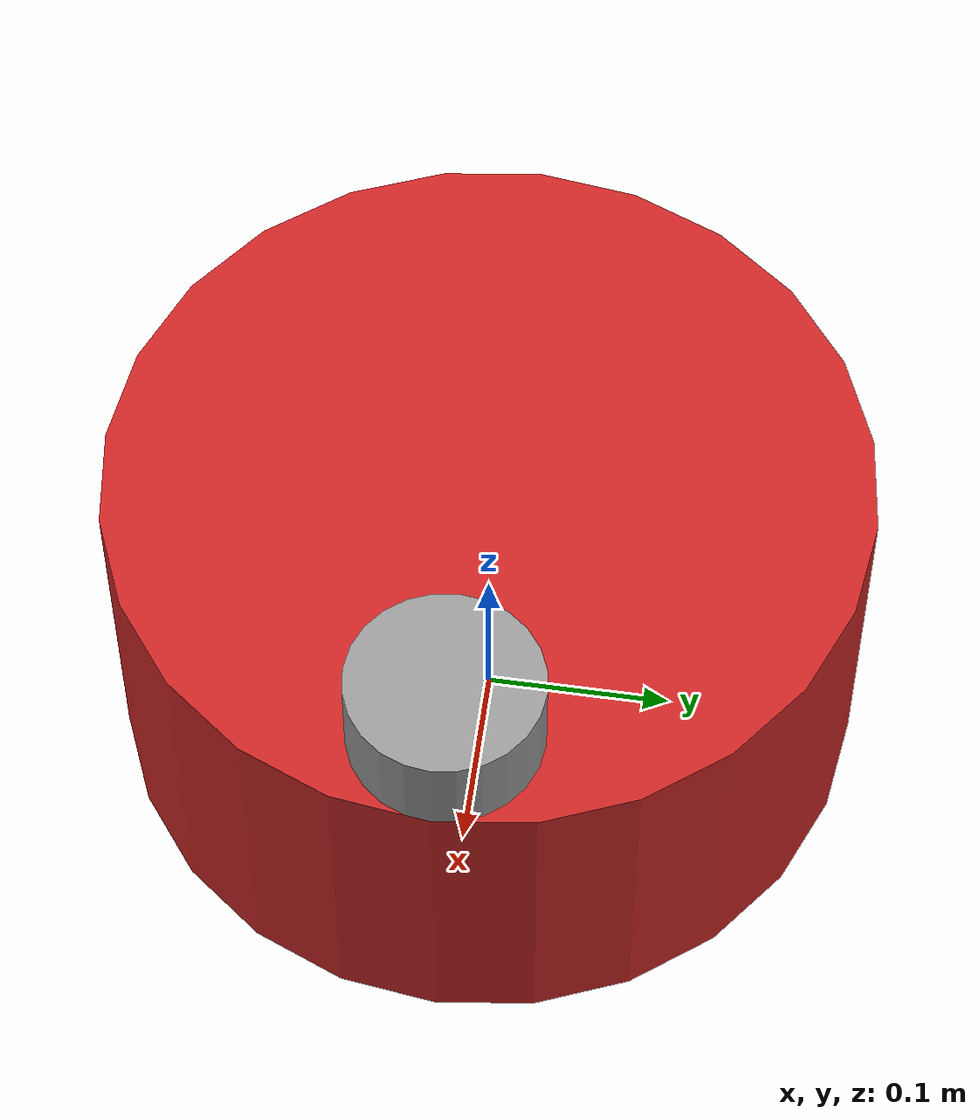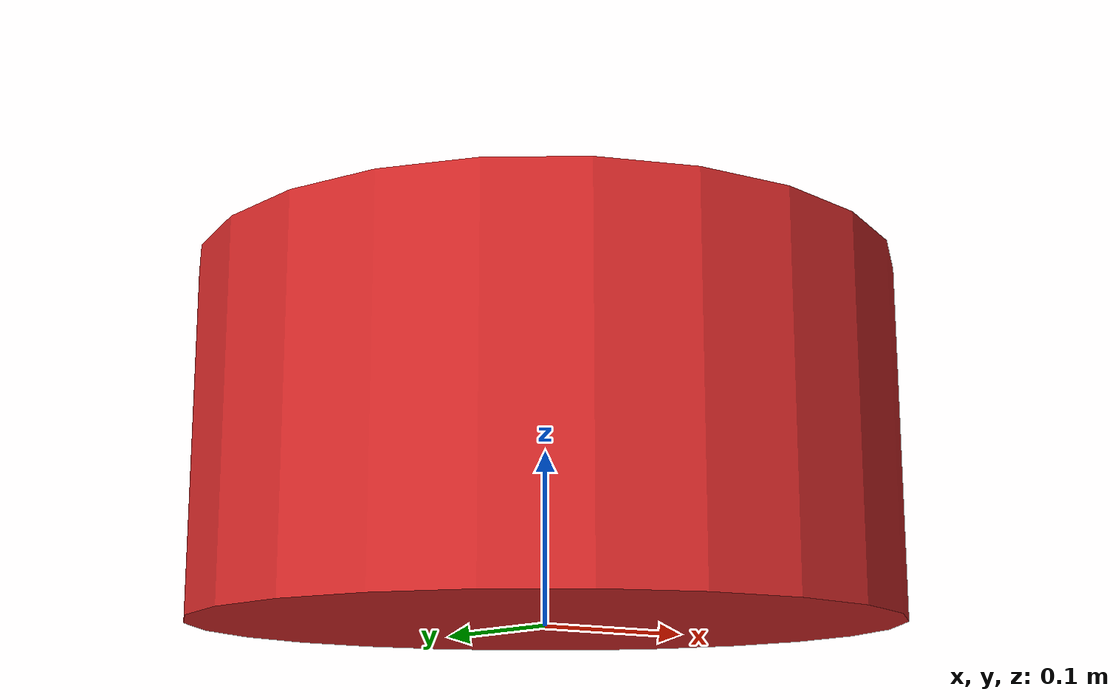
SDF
<?xml version='1.0'?>
<sdf version='1.4'>
  <!-- Robot model -->
  <model name="SDIC_Bug">
    <!-- Body elements -->
    <link name='bug'>
      <pose>0 0 .1 0 0 0</pose>
      <inertial>
	<mass>5</mass>
	<inertia>
	  <ixx>1</ixx>
	  <ixy>0</ixy>
	  <ixz>0</ixz>
	  <iyy>1</iyy>
	  <iyz>0</iyz>
	  <izz>1</izz>
	</inertia>
      </inertial>
      <collision name='collision'>
	<geometry>
	  <cylinder>
	    <radius>.2</radius>
	    <length>.2</length>
	  </cylinder>
	</geometry>
	<surface>
	  <friction>
	    <ode>
	      <mu>0.1</mu>
	      <mu2>0</mu2>
	      <slip1>0.0</slip1>
	      <slip2>0.0</slip2>
	    </ode>
	  </friction>
	</surface>
      </collision>

      <visual name='visual'>
	<geometry>
	  <cylinder>
	    <radius>.2</radius>
	    <length>.2</length>
	  </cylinder>
	</geometry>
	<material>
	  <script>
	    <uri>file://media/materials/scripts/gazebo.material</uri>
	    <name>Gazebo/Red</name>
	  </script>
	</material>
      </visual>

      <visual name='visualCamera'>
	<pose>0.15 0 .125 0 0 0</pose>
	<geometry>
	  <cylinder>
	    <radius>.05</radius>
	    <length>.05</length>
	  </cylinder>
	</geometry>
	<material>
	  <script>
	    <uri>file://media/materials/scripts/gazebo.material</uri>
	    <name>Gazebo/Grey</name>
	  </script>
	</material>
      </visual>

      <!-- Sensors -->
      <!-- Proximity sensor -->
      <sensor name="laser" type="ray">
	<pose>0 0 0.075 0 0 0 </pose>
	<ray>
	<scan>
	  <horizontal>
	    <samples>32</samples>
	    <resolution>1</resolution>
	    <min_angle>-3</min_angle>
	    <max_angle>3</max_angle>
	  </horizontal>
	</scan>
	<range>
	  <min>0.205</min>
	  <max>2.0</max>
	  <resolution>0.01</resolution>
	</range>
	<noise>
	  <type>gaussian</type>
	  <mean>0.0</mean>
	  <stddev>0.02</stddev>
	</noise>
      </ray>
      <always_on>1</always_on>
      <update_rate>25</update_rate>
      <visualize>0</visualize>
      </sensor>

      <!-- Proximity sensor -->
      <sensor name="laser_target" type="ray">
	<pose>0 0 0.25 0 0 0 </pose>
	<ray>
	<scan>
	  <horizontal>
	    <samples>32</samples>
	    <resolution>1</resolution>
	    <min_angle>-3</min_angle>
	    <max_angle>3</max_angle>
	  </horizontal>
	</scan>
	<range>
	  <min>0.26</min>
	  <max>2.5</max>
	  <resolution>0.01</resolution>
	</range>
	<noise>
	  <type>gaussian</type>
	  <mean>0.0</mean>
	  <stddev>0.02</stddev>
	</noise>
      </ray>
      <always_on>1</always_on>
      <update_rate>25</update_rate>
      <visualize>0</visualize>
      </sensor>

      <!-- Proximity sensor Gripper -->
      <sensor name="camera" type="camera">
	<pose>0.2 0 0.25 0 0.6 0</pose>
	<camera>
	  <horizontal_fov>0.8047</horizontal_fov>
          <image>
            <width>32</width>
            <height>28</height>
          </image>
          <clip>
            <near>0.02</near>
            <far>20</far>
          </clip>
	  <noise>
	    <type>gaussian</type>
	    <mean>0.0</mean>
	    <stddev>0.001</stddev>
	  </noise>
	</camera>
	<always_on>1</always_on>
	<update_rate>30</update_rate>
	<visualize>0</visualize>
      </sensor>
    </link>

    <plugin name="model_vel" filename="libvel_plugin.so" />
    <plugin name="model_reset" filename="libreset_plugin.so" />
  </model>
</sdf>
